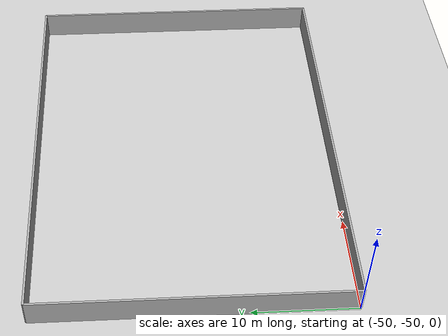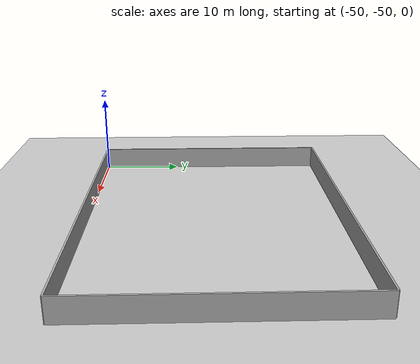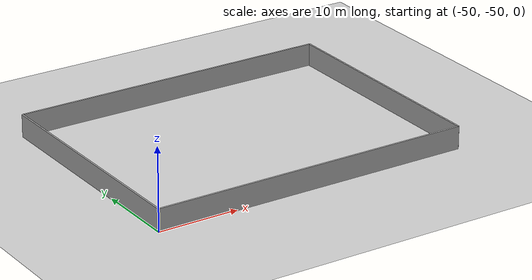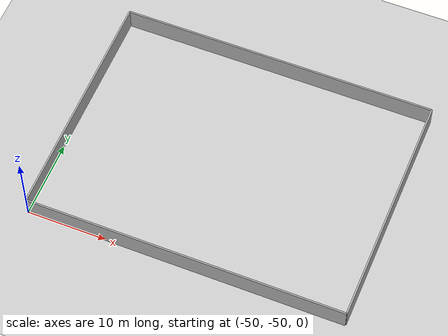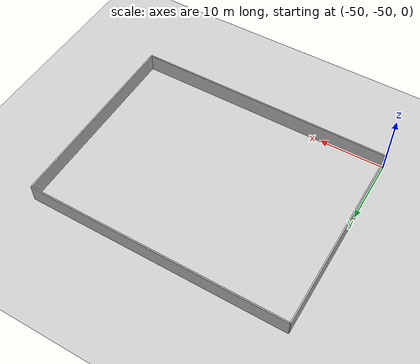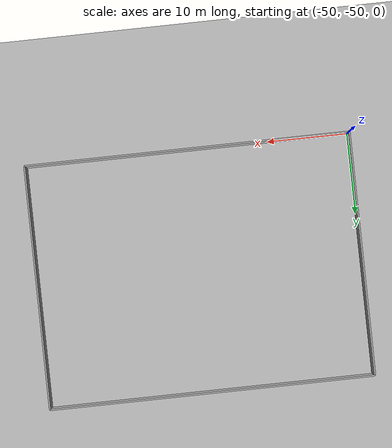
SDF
<sdf version="1.6">
 <world name="default">
  <model name="ground_plane">
   <static>1</static>
   <link name="link">
    <collision name="collision">
     <geometry><plane><normal>0 0 1</normal><size>100 100</size></plane></geometry>
     <surface>
      <contact><collide_bitmask>65535</collide_bitmask></contact>
      <friction><ode><mu>100</mu><mu2>50</mu2></ode></friction>
     </surface>
    </collision>
    <visual name="visual">
     <cast_shadows>0</cast_shadows>
     <geometry><plane><normal>0 0 1</normal><size>100 100</size></plane></geometry>
     <material>
      <script><uri>file://media/materials/scripts/gazebo.material</uri><name>Gazebo/Grey</name></script>
     </material>
    </visual>
   </link>
  </model>
  <model name="oldbrick_wall">
   <static>1</static>
   <link name="link_1">
    <pose>20 0 1.4 0 -0 0</pose>
    <inertial>
     <inertia><ixx>nan</ixx><ixy>0</ixy><ixz>0</ixz><iyy>nan</iyy><iyz>0</iyz><izz>nan</izz></inertia>
     <mass>0</mass>
    </inertial>
    <visual name="visual_1">
     <cast_shadows>0</cast_shadows>
     <geometry><box><size>40 0.2 2.8</size></box></geometry>
     <material>
      <script>
       <uri>model://env_wall/oldbrick_wall/materials/scripts</uri>
       <uri>model://env_wall/oldbrick_wall/materials/textures</uri>
       <name>vrc/oldbrick_wall</name>
      </script>
      <ambient>1 0.764706 0.305882 1</ambient>
      <shader type="pixel"/>
      <diffuse>0.7 0.7 0.7 1</diffuse>
      <specular>0.01 0.01 0.01 1</specular>
      <emissive>0 0 0 1</emissive>
     </material>
    </visual>
    <collision name="collision_1">
     <geometry><box><size>40 0.2 2.8</size></box></geometry>
     <surface>
      <friction>
       <ode><mu>1</mu><mu2>1</mu2><fdir1>0 0 0</fdir1><slip1>0</slip1><slip2>0</slip2></ode>
       <torsional>
        <coefficient>1</coefficient>
        <patch_radius>0</patch_radius>
        <surface_radius>0</surface_radius>
        <use_patch_radius>1</use_patch_radius>
        <ode><slip>0</slip></ode>
       </torsional>
      </friction>
      <bounce><restitution_coefficient>0</restitution_coefficient><threshold>1e+06</threshold></bounce>
      <contact>
       <collide_without_contact>0</collide_without_contact>
       <collide_without_contact_bitmask>1</collide_without_contact_bitmask>
       <collide_bitmask>1</collide_bitmask>
       <ode>
        <soft_cfm>0</soft_cfm>
        <soft_erp>0.2</soft_erp>
        <kp>1e+13</kp>
        <kd>1</kd>
        <max_vel>0.01</max_vel>
        <min_depth>0</min_depth>
       </ode>
       <bullet>
        <split_impulse>1</split_impulse>
        <split_impulse_penetration_threshold>-0.01</split_impulse_penetration_threshold>
        <soft_cfm>0</soft_cfm>
        <soft_erp>0.2</soft_erp>
        <kp>1e+13</kp>
        <kd>1</kd>
       </bullet>
      </contact>
     </surface>
    </collision>
   </link>
   <link name="link_2">
    <pose>20 30 1.4 0 -0 0</pose>
    <inertial>
     <inertia><ixx>nan</ixx><ixy>0</ixy><ixz>0</ixz><iyy>nan</iyy><iyz>0</iyz><izz>nan</izz></inertia>
     <mass>0</mass>
    </inertial>
    <visual name="visual_2">
     <cast_shadows>0</cast_shadows>
     <geometry><box><size>40 0.2 2.8</size></box></geometry>
     <material>
      <script>
       <uri>model://env_wall/oldbrick_wall/materials/scripts</uri>
       <uri>model://env_wall/oldbrick_wall/materials/textures</uri>
       <name>vrc/oldbrick_wall</name>
      </script>
      <ambient>1 0.764706 0.305882 1</ambient>
      <shader type="pixel"/>
      <diffuse>0.7 0.7 0.7 1</diffuse>
      <specular>0.01 0.01 0.01 1</specular>
      <emissive>0 0 0 1</emissive>
     </material>
    </visual>
    <collision name="collision_2">
     <geometry><box><size>40 0.2 2.8</size></box></geometry>
     <surface>
      <friction>
       <ode><mu>1</mu><mu2>1</mu2><fdir1>0 0 0</fdir1><slip1>0</slip1><slip2>0</slip2></ode>
       <torsional>
        <coefficient>1</coefficient>
        <patch_radius>0</patch_radius>
        <surface_radius>0</surface_radius>
        <use_patch_radius>1</use_patch_radius>
        <ode><slip>0</slip></ode>
       </torsional>
      </friction>
      <bounce><restitution_coefficient>0</restitution_coefficient><threshold>1e+06</threshold></bounce>
      <contact>
       <collide_without_contact>0</collide_without_contact>
       <collide_without_contact_bitmask>1</collide_without_contact_bitmask>
       <collide_bitmask>1</collide_bitmask>
       <ode>
        <soft_cfm>0</soft_cfm>
        <soft_erp>0.2</soft_erp>
        <kp>1e+13</kp>
        <kd>1</kd>
        <max_vel>0.01</max_vel>
        <min_depth>0</min_depth>
       </ode>
       <bullet>
        <split_impulse>1</split_impulse>
        <split_impulse_penetration_threshold>-0.01</split_impulse_penetration_threshold>
        <soft_cfm>0</soft_cfm>
        <soft_erp>0.2</soft_erp>
        <kp>1e+13</kp>
        <kd>1</kd>
       </bullet>
      </contact>
     </surface>
    </collision>
   </link>
   <link name="link_3">
    <pose>0 15 1.4 0 -0 1.57</pose>
    <inertial>
     <inertia><ixx>nan</ixx><ixy>0</ixy><ixz>0</ixz><iyy>nan</iyy><iyz>0</iyz><izz>nan</izz></inertia>
     <mass>0</mass>
    </inertial>
    <visual name="visual_3">
     <cast_shadows>0</cast_shadows>
     <geometry><box><size>30 0.2 2.8</size></box></geometry>
     <material>
      <script>
       <uri>model://env_wall/oldbrick_wall/materials/scripts</uri>
       <uri>model://env_wall/oldbrick_wall/materials/textures</uri>
       <name>vrc/oldbrick_wall</name>
      </script>
      <ambient>1 0.764706 0.305882 1</ambient>
      <shader type="pixel"/>
      <diffuse>0.7 0.7 0.7 1</diffuse>
      <specular>0.01 0.01 0.01 1</specular>
      <emissive>0 0 0 1</emissive>
     </material>
    </visual>
    <collision name="collision_3">
     <geometry><box><size>30 0.2 2.8</size></box></geometry>
     <surface>
      <friction>
       <ode><mu>1</mu><mu2>1</mu2><fdir1>0 0 0</fdir1><slip1>0</slip1><slip2>0</slip2></ode>
       <torsional>
        <coefficient>1</coefficient>
        <patch_radius>0</patch_radius>
        <surface_radius>0</surface_radius>
        <use_patch_radius>1</use_patch_radius>
        <ode><slip>0</slip></ode>
       </torsional>
      </friction>
      <bounce><restitution_coefficient>0</restitution_coefficient><threshold>1e+06</threshold></bounce>
      <contact>
       <collide_without_contact>0</collide_without_contact>
       <collide_without_contact_bitmask>1</collide_without_contact_bitmask>
       <collide_bitmask>1</collide_bitmask>
       <ode>
        <soft_cfm>0</soft_cfm>
        <soft_erp>0.2</soft_erp>
        <kp>1e+13</kp>
        <kd>1</kd>
        <max_vel>0.01</max_vel>
        <min_depth>0</min_depth>
       </ode>
       <bullet>
        <split_impulse>1</split_impulse>
        <split_impulse_penetration_threshold>-0.01</split_impulse_penetration_threshold>
        <soft_cfm>0</soft_cfm>
        <soft_erp>0.2</soft_erp>
        <kp>1e+13</kp>
        <kd>1</kd>
       </bullet>
      </contact>
     </surface>
    </collision>
   </link>
   <link name="link_4">
    <pose>40 15 1.4 0 -0 1.57</pose>
    <inertial>
     <inertia><ixx>nan</ixx><ixy>0</ixy><ixz>0</ixz><iyy>nan</iyy><iyz>0</iyz><izz>nan</izz></inertia>
     <mass>0</mass>
    </inertial>
    <visual name="visual_4">
     <cast_shadows>0</cast_shadows>
     <geometry><box><size>30 0.2 2.8</size></box></geometry>
     <material>
      <script>
       <uri>model://env_wall/oldbrick_wall/materials/scripts</uri>
       <uri>model://env_wall/oldbrick_wall/materials/textures</uri>
       <name>vrc/oldbrick_wall</name>
      </script>
      <ambient>1 0.764706 0.305882 1</ambient>
      <shader type="pixel"/>
      <diffuse>0.7 0.7 0.7 1</diffuse>
      <specular>0.01 0.01 0.01 1</specular>
      <emissive>0 0 0 1</emissive>
     </material>
    </visual>
    <collision name="collision_4">
     <geometry><box><size>30 0.2 2.8</size></box></geometry>
     <surface>
      <friction>
       <ode><mu>1</mu><mu2>1</mu2><fdir1>0 0 0</fdir1><slip1>0</slip1><slip2>0</slip2></ode>
       <torsional>
        <coefficient>1</coefficient>
        <patch_radius>0</patch_radius>
        <surface_radius>0</surface_radius>
        <use_patch_radius>1</use_patch_radius>
        <ode><slip>0</slip></ode>
       </torsional>
      </friction>
      <bounce><restitution_coefficient>0</restitution_coefficient><threshold>1e+06</threshold></bounce>
      <contact>
       <collide_without_contact>0</collide_without_contact>
       <collide_without_contact_bitmask>1</collide_without_contact_bitmask>
       <collide_bitmask>1</collide_bitmask>
       <ode>
        <soft_cfm>0</soft_cfm>
        <soft_erp>0.2</soft_erp>
        <kp>1e+13</kp>
        <kd>1</kd>
        <max_vel>0.01</max_vel>
        <min_depth>0</min_depth>
       </ode>
       <bullet>
        <split_impulse>1</split_impulse>
        <split_impulse_penetration_threshold>-0.01</split_impulse_penetration_threshold>
        <soft_cfm>0</soft_cfm>
        <soft_erp>0.2</soft_erp>
        <kp>1e+13</kp>
        <kd>1</kd>
       </bullet>
      </contact>
     </surface>
    </collision>
   </link>
   <pose>-50 -50 0 0 -0 0</pose>
  </model>
 </world>
</sdf>
